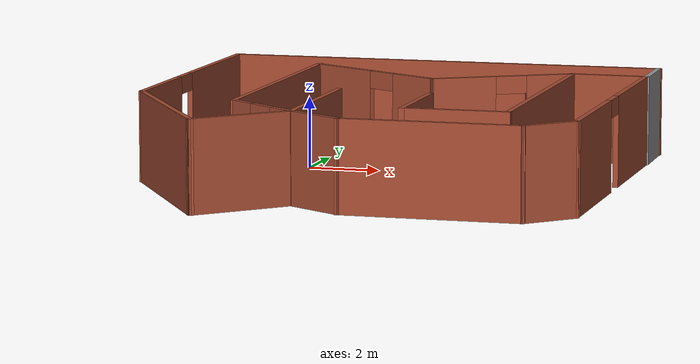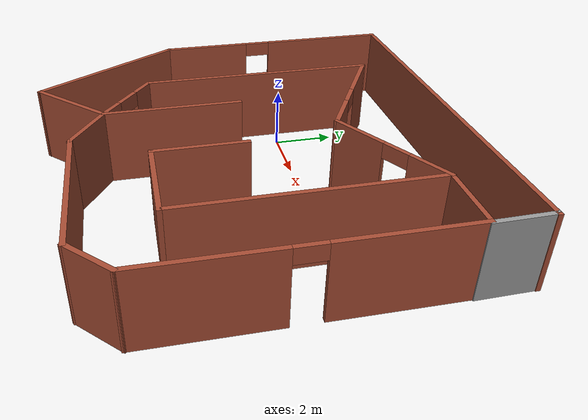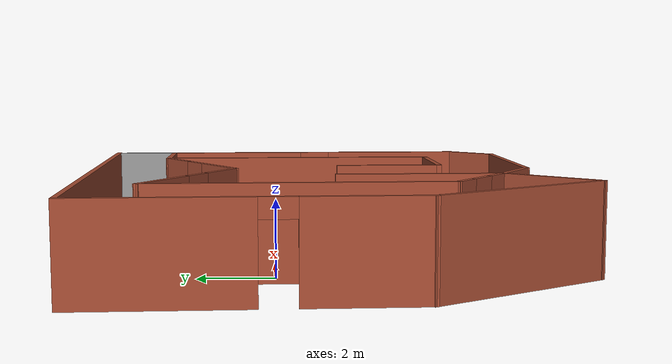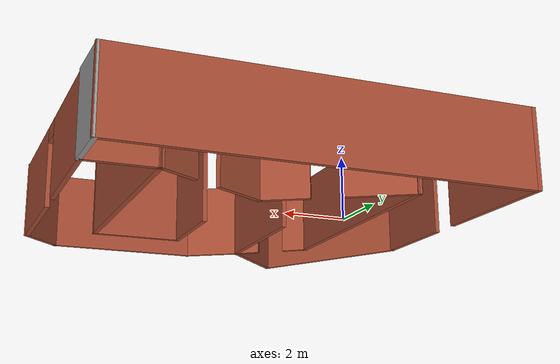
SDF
<?xml version='1.0'?>
<sdf version='1.7'>
  <model name='corridor'>
    <pose>2.61592 -1.63207 0 0 -0 0</pose>
    <link name='Wall_11'>
      <collision name='Wall_11_Collision'>
        <geometry>
          <box>
            <size>8 0.15 2.5</size>
          </box>
        </geometry>
        <pose>0 0 1.25 0 -0 0</pose>
      </collision>
      <visual name='Wall_11_Visual'>
        <pose>0 0 1.25 0 -0 0</pose>
        <geometry>
          <box>
            <size>8 0.15 2.5</size>
          </box>
        </geometry>
        <material>
          <script>
            <uri>file://media/materials/scripts/gazebo.material</uri>
            <name>Gazebo/Bricks</name>
          </script>
          <ambient>1 1 1 1</ambient>
        </material>
        <meta>
          <layer>0</layer>
        </meta>
      </visual>
      <pose>4.18832 0.82112 0 0 -0 -1.5708</pose>
    </link>
    <link name='Wall_12'>
      <collision name='Wall_12_Collision'>
        <geometry>
          <box>
            <size>3 0.15 2.5</size>
          </box>
        </geometry>
        <pose>0 0 1.25 0 -0 0</pose>
      </collision>
      <visual name='Wall_12_Visual'>
        <pose>0 0 1.25 0 -0 0</pose>
        <geometry>
          <box>
            <size>3 0.15 2.5</size>
          </box>
        </geometry>
        <material>
          <script>
            <uri>file://media/materials/scripts/gazebo.material</uri>
            <name>Gazebo/Bricks</name>
          </script>
          <ambient>1 1 1 1</ambient>
        </material>
        <meta>
          <layer>0</layer>
        </meta>
      </visual>
      <pose>2.76332 -3.10388 0 0 -0 3.14159</pose>
    </link>
    <link name='Wall_13'>
      <collision name='Wall_13_Collision'>
        <geometry>
          <box>
            <size>3 0.15 2.5</size>
          </box>
        </geometry>
        <pose>0 0 1.25 0 -0 0</pose>
      </collision>
      <visual name='Wall_13_Visual'>
        <pose>0 0 1.25 0 -0 0</pose>
        <geometry>
          <box>
            <size>3 0.15 2.5</size>
          </box>
        </geometry>
        <material>
          <script>
            <uri>file://media/materials/scripts/gazebo.material</uri>
            <name>Gazebo/Bricks</name>
          </script>
          <ambient>1 1 1 1</ambient>
        </material>
        <meta>
          <layer>0</layer>
        </meta>
      </visual>
      <pose>1.33832 -1.67888 0 0 -0 1.5708</pose>
    </link>
    <link name='Wall_15'>
      <collision name='Wall_15_Collision'>
        <geometry>
          <box>
            <size>4.5 0.15 2.5</size>
          </box>
        </geometry>
        <pose>0 0 1.25 0 -0 0</pose>
      </collision>
      <visual name='Wall_15_Visual'>
        <pose>0 0 1.25 0 -0 0</pose>
        <geometry>
          <box>
            <size>4.5 0.15 2.5</size>
          </box>
        </geometry>
        <material>
          <script>
            <uri>file://media/materials/scripts/gazebo.material</uri>
            <name>Gazebo/Bricks</name>
          </script>
          <ambient>1 1 1 1</ambient>
        </material>
        <meta>
          <layer>0</layer>
        </meta>
      </visual>
      <pose>-1.28787 -2.20052 0 0 -0 -1.5708</pose>
    </link>
    <link name='Wall_16'>
      <collision name='Wall_16_Collision'>
        <geometry>
          <box>
            <size>1.98197 0.15 2.5</size>
          </box>
        </geometry>
        <pose>0 0 1.25 0 -0 0</pose>
      </collision>
      <visual name='Wall_16_Visual'>
        <pose>0 0 1.25 0 -0 0</pose>
        <geometry>
          <box>
            <size>1.98197 0.15 2.5</size>
          </box>
        </geometry>
        <material>
          <script>
            <uri>file://media/materials/scripts/gazebo.material</uri>
            <name>Gazebo/Bricks</name>
          </script>
          <ambient>1 1 1 1</ambient>
        </material>
        <meta>
          <layer>0</layer>
        </meta>
      </visual>
      <pose>-0.513394 -4.89122 0 0 -0 -0.563279</pose>
    </link>
    <link name='Wall_17'>
      <collision name='Wall_17_Collision'>
        <geometry>
          <box>
            <size>5 0.15 2.5</size>
          </box>
        </geometry>
        <pose>0 0 1.25 0 -0 0</pose>
      </collision>
      <visual name='Wall_17_Visual'>
        <pose>0 0 1.25 0 -0 0</pose>
        <geometry>
          <box>
            <size>5 0.15 2.5</size>
          </box>
        </geometry>
        <material>
          <script>
            <uri>file://media/materials/scripts/gazebo.material</uri>
            <name>Gazebo/Bricks</name>
          </script>
          <ambient>1 1 1 1</ambient>
        </material>
        <meta>
          <layer>0</layer>
        </meta>
      </visual>
      <pose>2.68608 -5.38032 0 0 -0 0</pose>
    </link>
    <link name='Wall_18'>
      <collision name='Wall_18_Collision'>
        <geometry>
          <box>
            <size>1.75 0.15 2.5</size>
          </box>
        </geometry>
        <pose>0 0 1.25 0 -0 0</pose>
      </collision>
      <visual name='Wall_18_Visual'>
        <pose>0 0 1.25 0 -0 0</pose>
        <geometry>
          <box>
            <size>1.75 0.15 2.5</size>
          </box>
        </geometry>
        <material>
          <script>
            <uri>file://media/materials/scripts/gazebo.material</uri>
            <name>Gazebo/Bricks</name>
          </script>
          <ambient>1 1 1 1</ambient>
        </material>
        <meta>
          <layer>0</layer>
        </meta>
      </visual>
      <pose>5.67676 -4.81464 0 0 -0 0.785398</pose>
    </link>
    <link name='Wall_19'>
      <pose>6.26538 0.230995 0 0 -0 1.56568</pose>
      <visual name='Wall_19_Visual_0'>
        <pose>-2.51758 0 1.25 0 -0 0</pose>
        <geometry>
          <box>
            <size>4.0751 0.15 2.5</size>
          </box>
        </geometry>
        <material>
          <script>
            <uri>file://media/materials/scripts/gazebo.material</uri>
            <name>Gazebo/Bricks</name>
          </script>
          <ambient>1 1 1 1</ambient>
        </material>
        <meta>
          <layer>0</layer>
        </meta>
      </visual>
      <collision name='Wall_19_Collision_0'>
        <geometry>
          <box>
            <size>4.0751 0.15 2.5</size>
          </box>
        </geometry>
        <pose>-2.51758 0 1.25 0 -0 0</pose>
      </collision>
      <visual name='Wall_19_Visual_1'>
        <pose>2.48755 0 1.25 0 -0 0</pose>
        <geometry>
          <box>
            <size>4.13516 0.15 2.5</size>
          </box>
        </geometry>
        <material>
          <script>
            <uri>file://media/materials/scripts/gazebo.material</uri>
            <name>Gazebo/Bricks</name>
          </script>
          <ambient>1 1 1 1</ambient>
        </material>
        <meta>
          <layer>0</layer>
        </meta>
      </visual>
      <collision name='Wall_19_Collision_1'>
        <geometry>
          <box>
            <size>4.13516 0.15 2.5</size>
          </box>
        </geometry>
        <pose>2.48755 0 1.25 0 -0 0</pose>
      </collision>
      <visual name='Wall_19_Visual_2'>
        <pose>-0.030032 0 2.25 0 -0 0</pose>
        <geometry>
          <box>
            <size>0.9 0.15 0.5</size>
          </box>
        </geometry>
        <material>
          <script>
            <uri>file://media/materials/scripts/gazebo.material</uri>
            <name>Gazebo/Bricks</name>
          </script>
          <ambient>1 1 1 1</ambient>
        </material>
        <meta>
          <layer>0</layer>
        </meta>
      </visual>
      <collision name='Wall_19_Collision_2'>
        <geometry>
          <box>
            <size>0.9 0.15 0.5</size>
          </box>
        </geometry>
        <pose>-0.030032 0 2.25 0 -0 0</pose>
      </collision>
    </link>
    <link name='Wall_20'>
      <collision name='Wall_20_Collision'>
        <geometry>
          <box>
            <size>2.25029 0.15 2.5</size>
          </box>
        </geometry>
        <pose>0 0 1.25 0 -0 0</pose>
      </collision>
      <visual name='Wall_20_Visual'>
        <pose>0 0 1.25 0 -0 0</pose>
        <geometry>
          <box>
            <size>2.25029 0.15 2.5</size>
          </box>
        </geometry>
        <material>
          <script>
            <uri>file://media/materials/scripts/gazebo.material</uri>
            <name>Gazebo/Bricks</name>
          </script>
          <ambient>1 1 1 1</ambient>
        </material>
        <meta>
          <layer>0</layer>
        </meta>
      </visual>
      <pose>5.23832 4.72853 0 0 -0 3.12484</pose>
    </link>
    <link name='Wall_22'>
      <pose>-2.31698 -3.628 0 0 -0 -0.644919</pose>
      <visual name='Wall_22_Visual_0'>
        <pose>-0.911496 0 1.25 0 -0 0</pose>
        <geometry>
          <box>
            <size>0.902543 0.15 2.5</size>
          </box>
        </geometry>
        <material>
          <script>
            <uri>file://media/materials/scripts/gazebo.material</uri>
            <name>Gazebo/Bricks</name>
          </script>
          <ambient>1 1 1 1</ambient>
        </material>
        <meta>
          <layer>0</layer>
        </meta>
      </visual>
      <collision name='Wall_22_Collision_0'>
        <geometry>
          <box>
            <size>0.902543 0.15 2.5</size>
          </box>
        </geometry>
        <pose>-0.911496 0 1.25 0 -0 0</pose>
      </collision>
      <visual name='Wall_22_Visual_1'>
        <pose>0.901271 0 1.25 0 -0 0</pose>
        <geometry>
          <box>
            <size>0.922992 0.15 2.5</size>
          </box>
        </geometry>
        <material>
          <script>
            <uri>file://media/materials/scripts/gazebo.material</uri>
            <name>Gazebo/Bricks</name>
          </script>
          <ambient>1 1 1 1</ambient>
        </material>
        <meta>
          <layer>0</layer>
        </meta>
      </visual>
      <collision name='Wall_22_Collision_1'>
        <geometry>
          <box>
            <size>0.922992 0.15 2.5</size>
          </box>
        </geometry>
        <pose>0.901271 0 1.25 0 -0 0</pose>
      </collision>
      <visual name='Wall_22_Visual_2'>
        <pose>-0.010225 0 2.25 0 -0 0</pose>
        <geometry>
          <box>
            <size>0.9 0.15 0.5</size>
          </box>
        </geometry>
        <material>
          <script>
            <uri>file://media/materials/scripts/gazebo.material</uri>
            <name>Gazebo/Bricks</name>
          </script>
          <ambient>1 1 1 1</ambient>
        </material>
        <meta>
          <layer>0</layer>
        </meta>
      </visual>
      <collision name='Wall_22_Collision_2'>
        <geometry>
          <box>
            <size>0.9 0.15 0.5</size>
          </box>
        </geometry>
        <pose>-0.010225 0 2.25 0 -0 0</pose>
      </collision>
    </link>
    <link name='Wall_23'>
      <collision name='Wall_23_Collision'>
        <geometry>
          <box>
            <size>3.07524 0.15 2.5</size>
          </box>
        </geometry>
        <pose>0 0 1.25 0 -0 0</pose>
      </collision>
      <visual name='Wall_23_Visual'>
        <pose>0 0 1.25 0 -0 0</pose>
        <geometry>
          <box>
            <size>3.07524 0.15 2.5</size>
          </box>
        </geometry>
        <material>
          <script>
            <uri>file://media/materials/scripts/gazebo.material</uri>
            <name>Gazebo/Bricks</name>
          </script>
          <ambient>1 1 1 1</ambient>
        </material>
        <meta>
          <layer>0</layer>
        </meta>
      </visual>
      <pose>-2.3221 -5.43635 0 0 -0 -2.35619</pose>
    </link>
    <link name='Wall_24'>
      <collision name='Wall_24_Collision'>
        <geometry>
          <box>
            <size>5.62784 0.15 2.5</size>
          </box>
        </geometry>
        <pose>0 0 1.25 0 -0 0</pose>
      </collision>
      <visual name='Wall_24_Visual'>
        <pose>0 0 1.25 0 -0 0</pose>
        <geometry>
          <box>
            <size>5.62784 0.15 2.5</size>
          </box>
        </geometry>
        <material>
          <script>
            <uri>file://media/materials/scripts/gazebo.material</uri>
            <name>Gazebo/Bricks</name>
          </script>
          <ambient>1 1 1 1</ambient>
        </material>
        <meta>
          <layer>0</layer>
        </meta>
      </visual>
      <pose>-4.82681 -4.15987 0 0 -0 2.13754</pose>
    </link>
    <link name='Wall_25'>
      <pose>-6.2973 2.32584 0 0 -0 1.5708</pose>
      <visual name='Wall_25_Visual_0'>
        <pose>-2.68929 0 1.25 0 -0 0</pose>
        <geometry>
          <box>
            <size>3.12141 0.15 2.5</size>
          </box>
        </geometry>
        <material>
          <script>
            <uri>file://media/materials/scripts/gazebo.material</uri>
            <name>Gazebo/Bricks</name>
          </script>
          <ambient>1 1 1 1</ambient>
        </material>
        <meta>
          <layer>0</layer>
        </meta>
      </visual>
      <collision name='Wall_25_Collision_0'>
        <geometry>
          <box>
            <size>3.12141 0.15 2.5</size>
          </box>
        </geometry>
        <pose>-2.68929 0 1.25 0 -0 0</pose>
      </collision>
      <visual name='Wall_25_Visual_1'>
        <pose>2.01071 0 1.25 0 -0 0</pose>
        <geometry>
          <box>
            <size>4.47859 0.15 2.5</size>
          </box>
        </geometry>
        <material>
          <script>
            <uri>file://media/materials/scripts/gazebo.material</uri>
            <name>Gazebo/Bricks</name>
          </script>
          <ambient>1 1 1 1</ambient>
        </material>
        <meta>
          <layer>0</layer>
        </meta>
      </visual>
      <collision name='Wall_25_Collision_1'>
        <geometry>
          <box>
            <size>4.47859 0.15 2.5</size>
          </box>
        </geometry>
        <pose>2.01071 0 1.25 0 -0 0</pose>
      </collision>
      <visual name='Wall_25_Visual_2'>
        <pose>-0.67859 0 2.25 0 -0 0</pose>
        <geometry>
          <box>
            <size>0.9 0.15 0.5</size>
          </box>
        </geometry>
        <material>
          <script>
            <uri>file://media/materials/scripts/gazebo.material</uri>
            <name>Gazebo/Bricks</name>
          </script>
          <ambient>1 1 1 1</ambient>
        </material>
        <meta>
          <layer>0</layer>
        </meta>
      </visual>
      <collision name='Wall_25_Collision_2'>
        <geometry>
          <box>
            <size>0.9 0.15 0.5</size>
          </box>
        </geometry>
        <pose>-0.67859 0 2.25 0 -0 0</pose>
      </collision>
    </link>
    <link name='Wall_26'>
      <collision name='Wall_26_Collision'>
        <geometry>
          <box>
            <size>12.75 0.15 2.5</size>
          </box>
        </geometry>
        <pose>0 0 1.25 0 -0 0</pose>
      </collision>
      <visual name='Wall_26_Visual'>
        <pose>0 0 1.25 0 -0 0</pose>
        <geometry>
          <box>
            <size>12.75 0.15 2.5</size>
          </box>
        </geometry>
        <material>
          <script>
            <uri>file://media/materials/scripts/gazebo.material</uri>
            <name>Gazebo/Bricks</name>
          </script>
          <ambient>1 1 1 1</ambient>
        </material>
        <meta>
          <layer>0</layer>
        </meta>
      </visual>
      <pose>0.025836 6.50084 0 0 -0 0</pose>
    </link>
    <link name='Wall_27'>
      <collision name='Wall_27_Collision'>
        <geometry>
          <box>
            <size>1.9399 0.15 2.5</size>
          </box>
        </geometry>
        <pose>0 0 1.25 0 -0 0</pose>
      </collision>
      <visual name='Wall_27_Visual'>
        <pose>0 0 1.25 0 -0 0</pose>
        <geometry>
          <box>
            <size>1.9399 0.15 2.5</size>
          </box>
        </geometry>
        <material>
          <script>
            <uri>file://media/materials/scripts/gazebo.material</uri>
            <name>Gazebo/Grey</name>
          </script>
          <ambient>1 1 1 1</ambient>
        </material>
        <meta>
          <layer>0</layer>
        </meta>
      </visual>
      <pose>6.3131 5.60589 0 0 -0 -1.55918</pose>
    </link>
    <link name='Wall_7'>
      <collision name='Wall_7_Collision'>
        <geometry>
          <box>
            <size>8 0.15 2.5</size>
          </box>
        </geometry>
        <pose>0 0 1.25 0 -0 0</pose>
      </collision>
      <visual name='Wall_7_Visual'>
        <pose>0 0 1.25 0 -0 0</pose>
        <geometry>
          <box>
            <size>8 0.15 2.5</size>
          </box>
        </geometry>
        <material>
          <script>
            <uri>file://media/materials/scripts/gazebo.material</uri>
            <name>Gazebo/Bricks</name>
          </script>
          <ambient>1 1 1 1</ambient>
        </material>
        <meta>
          <layer>0</layer>
        </meta>
      </visual>
      <pose>-3.3461 1.07112 0 0 -0 1.5708</pose>
    </link>
    <link name='Wall_8'>
      <pose>-1.35424 3.84612 0 0 -0 -0.523599</pose>
      <visual name='Wall_8_Visual_0'>
        <pose>-1.24258 0 1.25 0 -0 0</pose>
        <geometry>
          <box>
            <size>2.26483 0.15 2.5</size>
          </box>
        </geometry>
        <material>
          <script>
            <uri>file://media/materials/scripts/gazebo.material</uri>
            <name>Gazebo/Bricks</name>
          </script>
          <ambient>1 1 1 1</ambient>
        </material>
        <meta>
          <layer>0</layer>
        </meta>
      </visual>
      <collision name='Wall_8_Collision_0'>
        <geometry>
          <box>
            <size>2.26483 0.15 2.5</size>
          </box>
        </geometry>
        <pose>-1.24258 0 1.25 0 -0 0</pose>
      </collision>
      <visual name='Wall_8_Visual_1'>
        <pose>1.58242 0 1.25 0 -0 0</pose>
        <geometry>
          <box>
            <size>1.58517 0.15 2.5</size>
          </box>
        </geometry>
        <material>
          <script>
            <uri>file://media/materials/scripts/gazebo.material</uri>
            <name>Gazebo/Bricks</name>
          </script>
          <ambient>1 1 1 1</ambient>
        </material>
        <meta>
          <layer>0</layer>
        </meta>
      </visual>
      <collision name='Wall_8_Collision_1'>
        <geometry>
          <box>
            <size>1.58517 0.15 2.5</size>
          </box>
        </geometry>
        <pose>1.58242 0 1.25 0 -0 0</pose>
      </collision>
      <visual name='Wall_8_Visual_2'>
        <pose>0.339833 0 2.25 0 -0 0</pose>
        <geometry>
          <box>
            <size>0.9 0.15 0.5</size>
          </box>
        </geometry>
        <material>
          <script>
            <uri>file://media/materials/scripts/gazebo.material</uri>
            <name>Gazebo/Bricks</name>
          </script>
          <ambient>1 1 1 1</ambient>
        </material>
        <meta>
          <layer>0</layer>
        </meta>
      </visual>
      <collision name='Wall_8_Collision_2'>
        <geometry>
          <box>
            <size>0.9 0.15 0.5</size>
          </box>
        </geometry>
        <pose>0.339833 0 2.25 0 -0 0</pose>
      </collision>
    </link>
    <link name='Wall_9'>
      <pose>2.41297 3.72112 0 0 -0 0.523599</pose>
      <visual name='Wall_9_Visual_0'>
        <pose>-1.17365 0 1.25 0 -0 0</pose>
        <geometry>
          <box>
            <size>1.9027 0.15 2.5</size>
          </box>
        </geometry>
        <material>
          <script>
            <uri>file://media/materials/scripts/gazebo.material</uri>
            <name>Gazebo/Bricks</name>
          </script>
          <ambient>0.435294 0.796078 0.67451 1</ambient>
        </material>
        <meta>
          <layer>0</layer>
        </meta>
      </visual>
      <collision name='Wall_9_Collision_0'>
        <geometry>
          <box>
            <size>1.9027 0.15 2.5</size>
          </box>
        </geometry>
        <pose>-1.17365 0 1.25 0 -0 0</pose>
      </collision>
      <visual name='Wall_9_Visual_1'>
        <pose>1.40135 0 1.25 0 -0 0</pose>
        <geometry>
          <box>
            <size>1.4473 0.15 2.5</size>
          </box>
        </geometry>
        <material>
          <script>
            <uri>file://media/materials/scripts/gazebo.material</uri>
            <name>Gazebo/Bricks</name>
          </script>
          <ambient>0.435294 0.796078 0.67451 1</ambient>
        </material>
        <meta>
          <layer>0</layer>
        </meta>
      </visual>
      <collision name='Wall_9_Collision_1'>
        <geometry>
          <box>
            <size>1.4473 0.15 2.5</size>
          </box>
        </geometry>
        <pose>1.40135 0 1.25 0 -0 0</pose>
      </collision>
      <visual name='Wall_9_Visual_2'>
        <pose>0.227697 0 2.25 0 -0 0</pose>
        <geometry>
          <box>
            <size>0.9 0.15 0.5</size>
          </box>
        </geometry>
        <material>
          <script>
            <uri>file://media/materials/scripts/gazebo.material</uri>
            <name>Gazebo/Bricks</name>
          </script>
          <ambient>0.435294 0.796078 0.67451 1</ambient>
        </material>
        <meta>
          <layer>0</layer>
        </meta>
      </visual>
      <collision name='Wall_9_Collision_2'>
        <geometry>
          <box>
            <size>0.9 0.15 0.5</size>
          </box>
        </geometry>
        <pose>0.227697 0 2.25 0 -0 0</pose>
      </collision>
    </link>
    <static>1</static>
  </model>
</sdf>
